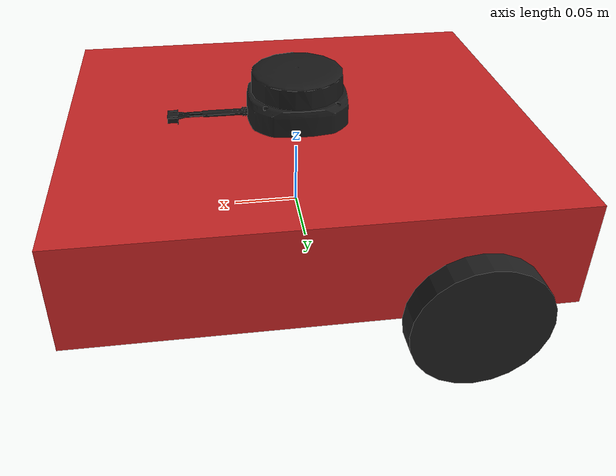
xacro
<?xml version="1.0"?>
<robot xmlns:xacro="http://www.ros.org/wiki/xacro" name="diff_bot">
    <!-- Main URDF file for Two Wheeled Differential Drive Robot -->

    <!-- Include general xacro macros -->
    <xacro:include filename="common.xacro"/>

    <!-- Include sensors -->
    <xacro:include filename="lidar.urdf.xacro"/>

    <!-- Robot Variables -->
    <xacro:property name="chassis_length" value="0.35"/>
    <xacro:property name="chassis_width" value="0.3"/>
    <xacro:property name="chassis_height" value="0.08"/>
    <xacro:property name="chassis_mass" value="4.0"/>
    <xacro:property name="wheel_radius" value="0.05"/>
    <xacro:property name="wheel_thickness" value="0.018"/>
    <xacro:property name="wheel_mass" value="0.3"/>
    <xacro:property name="wheel_offset_x" value="0.1"/>
    <xacro:property name="wheel_offset_y" value="${chassis_width/2 + wheel_thickness/2}"/>
    <xacro:property name="wheel_offset_z" value="0.0"/>
    <xacro:property name="caster_wheel_radius" value="0.032225"/>
    <xacro:property name="caster_wheel_mass" value="0.2"/>
    <xacro:property name="caster_wheel_offset_x" value="${chassis_length/2}"/>
    <xacro:property name="caster_wheel_offset_z" value="${wheel_offset_z - wheel_radius + caster_wheel_radius}"/>

    <!-- Base footprint -->
    <link name="base_footprint"/>

    <!-- Base link -->
    <joint name="base_footprint_joint" type="fixed">
        <parent link="base_footprint"/>
        <child link="base_link"/>
        <origin xyz="0 0 0" rpy="0 0 0"/>
    </joint>
    <link name="base_link"/>

    <!-- Chassis -->
    <joint name="chassis_joint" type="fixed">
        <parent link="base_link"/>
        <child link="chassis"/>
        <origin xyz="0 0 0"/>
    </joint>
    <link name="chassis">
        <visual>
            <origin xyz="0 0 ${chassis_height/2}"/>
            <geometry>
                <box size="${chassis_length} ${chassis_width} ${chassis_height}"/>
            </geometry>
            <material name="red"/>
        </visual>
        <collision>
            <origin xyz="0 0 ${chassis_height/2}"/>
            <geometry>
                <box size="${chassis_length} ${chassis_width} ${chassis_height}"/>
            </geometry>
        </collision>
        <xacro:inertial_box mass="0.5" x="${chassis_length}" y="${chassis_width}" z="${chassis_height}">
            <origin xyz="0 0 ${chassis_height/2}" rpy="0 0 0"/>
        </xacro:inertial_box>
    </link>

    <!-- Left Wheel -->
    <joint name="left_wheel_joint" type="continuous">
        <parent link="base_link"/>
        <child link="left_wheel"/>
        <origin xyz="${-wheel_offset_x} ${wheel_offset_y} 0" rpy="-${pi/2} 0 0"/>
        <axis xyz="0 0 1"/>
    </joint>
    <link name="left_wheel">
        <visual>
            <geometry>
                <cylinder radius="${wheel_radius}" length="${wheel_thickness}"/>
            </geometry>
            <material name="black"/>
        </visual>
        <collision>
            <geometry>
                <sphere radius="${wheel_radius}"/>
            </geometry>
        </collision>
        <xacro:inertial_cylinder mass="${wheel_mass}" length="${wheel_thickness}" radius="${wheel_radius}">
            <origin xyz="0 0 0" rpy="0 0 0"/>
        </xacro:inertial_cylinder>
    </link>

    <!-- Right Wheel -->
    <joint name="right_wheel_joint" type="continuous">
        <parent link="base_link"/>
        <child link="right_wheel"/>
        <origin xyz="${-wheel_offset_x} ${-wheel_offset_y} 0" rpy="${pi/2} 0 0"/>
        <axis xyz="0 0 -1"/>
    </joint>
    <link name="right_wheel">
        <visual>
            <geometry>
                <cylinder radius="${wheel_radius}" length="${wheel_thickness}"/>
            </geometry>
            <material name="black"/>
        </visual>
        <collision>
            <geometry>
                <sphere radius="${wheel_radius}"/>
            </geometry>
        </collision>
        <xacro:inertial_cylinder mass="${wheel_mass}" length="${wheel_thickness}" radius="${wheel_radius}">
            <origin xyz="0 0 0" rpy="0 0 0"/>
        </xacro:inertial_cylinder>
    </link>

    <!-- Transmission elements for the wheels -->
    <transmission name="left_wheel_trans">
        <type>transmission_interface/SimpleTransmission</type>
        <joint name="left_wheel_joint">
            <hardwareInterface>hardware_interface/VelocityJointInterface</hardwareInterface>
        </joint>
        <actuator name="left_wheel_motor">
            <hardwareInterface>hardware_interface/VelocityJointInterface</hardwareInterface>
            <mechanicalReduction>1</mechanicalReduction>
        </actuator>
    </transmission>

    <transmission name="right_wheel_trans">
        <type>transmission_interface/SimpleTransmission</type>
        <joint name="right_wheel_joint">
            <hardwareInterface>hardware_interface/VelocityJointInterface</hardwareInterface>
        </joint>
        <actuator name="right_wheel_motor">
            <hardwareInterface>hardware_interface/VelocityJointInterface</hardwareInterface>
            <mechanicalReduction>1</mechanicalReduction>
        </actuator>
    </transmission>

    <!-- Caster Wheel -->
    <joint name="caster_wheel_joint" type="fixed">
        <parent link="chassis"/>
        <child link="caster_wheel"/>
        <origin xyz="${caster_wheel_offset_x} 0 ${caster_wheel_offset_z}"/>
    </joint>
    <link name="caster_wheel">
        <visual>
            <geometry>
                <sphere radius="${caster_wheel_radius}"/>
            </geometry>
            <material name="black"/>
        </visual>
        <collision>
            <geometry>
                <sphere radius="${caster_wheel_radius}"/>
            </geometry>
        </collision>
        <xacro:inertial_sphere mass="${caster_wheel_mass}" radius="${caster_wheel_radius}">
            <origin xyz="0 0 0" rpy="0 0 0"/>
        </xacro:inertial_sphere>
    </link>

    <!-- Lidar Sensor (macro call) -->
    <xacro:lidar_sensor
        parent="chassis"
        frame_id="laser_frame"
        xyz_offset="0 0 0.1"
        rpy_offset="0 0 0"
        topic_name="scan"
        update_rate="10"
        ray_count="720"
        min_angle="-3.14159"
        max_angle="3.14159"
        min_range="0.20"
        max_range="30.0"
        range_resolution="0.013"
        always_on="true"
        visualize="false"
        enable_collision="false"
    />

    <!-- Gazebo -->
    <gazebo reference="chassis">
        <material>Gazebo/Red</material>
    </gazebo>

    <gazebo reference="left_wheel">
        <material>Gazebo/Black</material>
    </gazebo>

    <gazebo reference="right_wheel">
        <material>Gazebo/Black</material>
    </gazebo>

    <gazebo reference="caster_wheel">
        <material>Gazebo/Black</material>
        <mu1 value="0.001"/>
        <mu2 value="0.001"/>
    </gazebo>

    <!-- Gazebo plugins -->
    <gazebo>
        <!-- Differential Drive Robot -->
        <plugin filename="gz-sim-diff-drive-system" name="gz::sim::systems::DiffDrive">
            <left_joint>left_wheel_joint</left_joint>
            <right_joint>right_wheel_joint</right_joint>
            <wheel_separation>${wheel_offset_y*2}</wheel_separation>
            <wheel_radius>${wheel_radius}</wheel_radius>
            <max_linear_acceleration>6.0</max_linear_acceleration>
            <frame_id>odom</frame_id>
            <child_frame_id>base_link</child_frame_id>
            <tf_topic>/tf</tf_topic>
            <topic>cmd_vel</topic>
            <odom_topic>odom</odom_topic>
            <odom_publisher_frequency>30</odom_publisher_frequency>
        </plugin>

        <!-- Joint State Publisher -->
        <plugin filename="gz-sim-joint-state-publisher-system" name="gz::sim::systems::JointStatePublisher">
            <topic>joint_states</topic>
            <joint_name>left_wheel_joint</joint_name>
            <joint_name>right_wheel_joint</joint_name>
        </plugin>
    </gazebo>
</robot>

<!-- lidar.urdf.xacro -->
<robot xmlns:xacro="http://www.ros.org/wiki/xacro">
  <xacro:property name="M_PI" value="3.1415926535897931" />

  <xacro:macro name="lidar_sensor" params="
    prefix:=''
    parent:='base_link'
    frame_id:='laser_frame'
    mesh_file:='file:///home/vgi/ebot_ws/src/ebot_control/meshes/rplidar/rplidar_s2.stl'
    xyz_offset:='0 0 0.0825'
    rpy_offset:='0 0 0'
    mesh_xyz_offset:='0 0 0'
    mesh_rpy_offset:='${-M_PI/2} 0 0'
    mesh_scale:='0.001 0.001 0.001'
    collision_xyz_offset:='0 0 0'
    collision_rpy_offset:='0 0 0'
    inertial_xyz_offset:='0 0 0'
    inertial_rpy_offset:='0 0 0'
    lidar_width:=0.077
    lidar_height:=0.0398
    mass:=0.185
    material_name:='rplidar_black'
    material_color:='0.1 0.1 0.1 1'
    gazebo_material_ambient:='0.1 0.1 0.1 1'
    gazebo_material_diffuse:='0.1 0.1 0.1 1'
    gazebo_material_specular:='0.1 0.1 0.1 1'
    update_rate:=10
    ray_count:=720
    min_angle:='-3.14159'
    max_angle:='3.14159'
    min_range:='0.20'
    max_range:='30.0'
    range_resolution:='0.013'
    topic_name:='scan'
    always_on:=true
    visualize:=false
    enable_collision:=false">

    <xacro:property name="radius" value="${lidar_width/2}" />
    <xacro:property name="ixx_iyy" value="${(mass/12) * (3 * radius * radius + lidar_height * lidar_height)}" />
    <xacro:property name="izz" value="${(mass/2) * (radius * radius)}" />

    <!-- 2.5.3 Lidar physical properties -->
    <link name="${prefix}${frame_id}">
      <visual>
        <origin xyz="${mesh_xyz_offset}" rpy="${mesh_rpy_offset}"/>
        <geometry>
          <mesh filename="${mesh_file}" scale="${mesh_scale}"/>
        </geometry>
        <material name="${material_name}">
          <color rgba="${material_color}"/>
        </material>
      </visual>

      <xacro:if value="${enable_collision}">
        <collision>
          <origin xyz="${collision_xyz_offset}" rpy="${collision_rpy_offset}"/>
          <geometry>
            <cylinder radius="${lidar_width/2}" length="${lidar_height}"/>
          </geometry>
        </collision>
      </xacro:if>

      <inertial>
        <mass value="${mass}" />
        <origin xyz="${inertial_xyz_offset}" rpy="${inertial_rpy_offset}"/>
        <inertia
          ixx="${ixx_iyy}"
          ixy="0.0"
          ixz="0.0"
          iyy="${ixx_iyy}"
          iyz="0.0"
          izz="${izz}" />
      </inertial>
    </link>

    <joint name="${prefix}${frame_id}_joint" type="fixed">
      <parent link="${prefix}${parent}"/>
      <child link="${prefix}${frame_id}" />
      <origin xyz="${xyz_offset}" rpy="${rpy_offset}"/>
    </joint>

    <!-- 2.5.3 IMU gz sim properties -->
    <gazebo reference="${prefix}${frame_id}">
      <material>
        <ambient>${gazebo_material_ambient}</ambient>
        <diffuse>${gazebo_material_diffuse}</diffuse>
        <specular>${gazebo_material_specular}</specular>
      </material>
      <sensor name="${prefix}lidar_sensor" type="gpu_lidar">
        <topic>${topic_name}</topic>
        <update_rate>${update_rate}</update_rate>
        <always_on>${always_on}</always_on>
        <visualize>${visualize}</visualize>
        <lidar>
          <scan>
            <horizontal>
              <samples>${ray_count}</samples>
              <resolution>1</resolution>
              <min_angle>${min_angle}</min_angle>
              <max_angle>${max_angle}</max_angle>
            </horizontal>
            <vertical>
              <samples>1</samples>
              <resolution>1</resolution>
              <min_angle>0</min_angle>
              <max_angle>0</max_angle>
            </vertical>
          </scan>
          <range>
            <min>${min_range}</min>
            <max>${max_range}</max>
            <resolution>${range_resolution}</resolution>
          </range>
        </lidar>
        <gz_frame_id>${prefix}${frame_id}</gz_frame_id>
      </sensor>
    </gazebo>

  </xacro:macro>

</robot>
